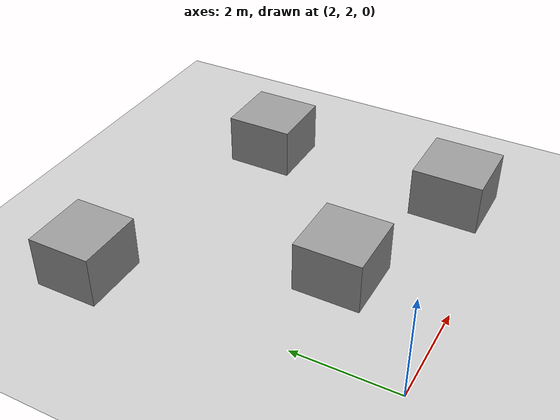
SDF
<sdf version="1.6">
 <world name="default">
  <light name="sun" type="directional">
   <pose>0 0 10 0 -0 0</pose>
   <diffuse>0.8 0.8 0.8 1</diffuse>
   <specular>0.2 0.2 0.2 1</specular>
   <attenuation>
    <range>1000</range>
    <constant>0.9</constant>
    <linear>0.01</linear>
    <quadratic>0.001</quadratic>
   </attenuation>
   <direction>-0.5 0.1 -0.9</direction>
  </light>
  <model name="ground_plane">
   <static>1</static>
   <link name="link">
    <collision name="collision">
     <geometry><plane><normal>0 0 1</normal><size>100 100</size></plane></geometry>
     <surface>
      <contact><collide_bitmask>65535</collide_bitmask></contact>
      <friction><ode><mu>100</mu><mu2>50</mu2></ode></friction>
     </surface>
    </collision>
    <visual name="visual">
     <cast_shadows>0</cast_shadows>
     <geometry><plane><normal>0 0 1</normal><size>100 100</size></plane></geometry>
     <material>
      <script><uri>file://media/materials/scripts/gazebo.material</uri><name>Gazebo/Grey</name></script>
     </material>
    </visual>
   </link>
  </model>
  <gravity>0 0 -9.8</gravity>
  <magnetic_field>6e-06 2.3e-05 -4.2e-05</magnetic_field>
  <atmosphere type="adiabatic"/>
  <physics name="default_physics" default="0" type="ode">
   <max_step_size>0.001</max_step_size>
   <real_time_factor>1</real_time_factor>
   <real_time_update_rate>1000</real_time_update_rate>
  </physics>
  <scene><ambient>0.4 0.4 0.4 1</ambient><background>0.7 0.7 0.7 1</background><shadows>1</shadows></scene>
  <spherical_coordinates>
   <surface_model>EARTH_WGS84</surface_model>
   <latitude_deg>0</latitude_deg>
   <longitude_deg>0</longitude_deg>
   <elevation>0</elevation>
   <heading_deg>0</heading_deg>
  </spherical_coordinates>
  <model name="unit_box">
   <pose>7 7 0.5 0 -0 0</pose>
   <link name="link">
    <inertial>
     <mass>1</mass>
     <inertia>
      <ixx>0.166667</ixx>
      <ixy>0</ixy>
      <ixz>0</ixz>
      <iyy>0.166667</iyy>
      <iyz>0</iyz>
      <izz>0.166667</izz>
     </inertia>
    </inertial>
    <collision name="collision"><geometry><box><size>1.27752 1.30891 1</size></box></geometry></collision>
    <visual name="visual">
     <geometry><box><size>1.27752 1.30891 1</size></box></geometry>
     <material>
      <script><name>Gazebo/Grey</name><uri>file://media/materials/scripts/gazebo.material</uri></script>
     </material>
    </visual>
   </link>
  </model>
  <model name="unit_box_0">
   <pose>7 3 0.5 0 -0 0</pose>
   <link name="link">
    <inertial>
     <mass>1</mass>
     <inertia>
      <ixx>0.166667</ixx>
      <ixy>0</ixy>
      <ixz>0</ixz>
      <iyy>0.166667</iyy>
      <iyz>0</iyz>
      <izz>0.166667</izz>
     </inertia>
    </inertial>
    <collision name="collision"><geometry><box><size>1.307 1.35605 1</size></box></geometry></collision>
    <visual name="visual">
     <geometry><box><size>1.307 1.35605 1</size></box></geometry>
     <material>
      <script><name>Gazebo/Grey</name><uri>file://media/materials/scripts/gazebo.material</uri></script>
     </material>
    </visual>
   </link>
  </model>
  <model name="unit_box_1">
   <pose>2 8 0.5 0 -0 3e-06</pose>
   <link name="link">
    <inertial>
     <mass>1</mass>
     <inertia>
      <ixx>0.166667</ixx>
      <ixy>0</ixy>
      <ixz>0</ixz>
      <iyy>0.166667</iyy>
      <iyz>0</iyz>
      <izz>0.166667</izz>
     </inertia>
    </inertial>
    <collision name="collision"><geometry><box><size>1.30495 1.21997 1</size></box></geometry></collision>
    <visual name="visual">
     <geometry><box><size>1.30495 1.21997 1</size></box></geometry>
     <material>
      <script><name>Gazebo/Grey</name><uri>file://media/materials/scripts/gazebo.material</uri></script>
     </material>
    </visual>
   </link>
  </model>
  <model name="unit_box_2">
   <pose>4 3.99999 0.499995 -0 -7e-06 -7e-06</pose>
   <link name="link">
    <inertial>
     <mass>1</mass>
     <inertia>
      <ixx>0.166667</ixx>
      <ixy>0</ixy>
      <ixz>0</ixz>
      <iyy>0.166667</iyy>
      <iyz>0</iyz>
      <izz>0.166667</izz>
     </inertia>
    </inertial>
    <collision name="collision"><geometry><box><size>1.32899 1.28375 1</size></box></geometry></collision>
    <visual name="visual">
     <geometry><box><size>1.32899 1.28375 1</size></box></geometry>
     <material>
      <script><name>Gazebo/Grey</name><uri>file://media/materials/scripts/gazebo.material</uri></script>
     </material>
    </visual>
   </link>
  </model>
 </world>
</sdf>
